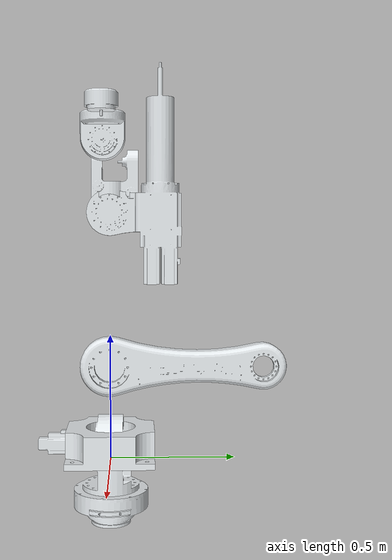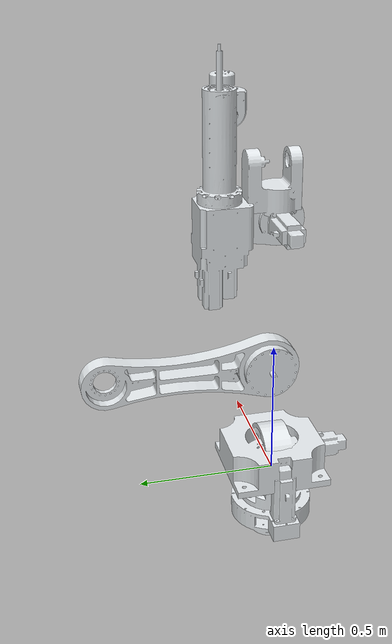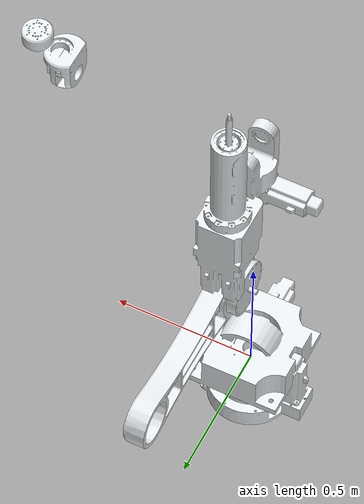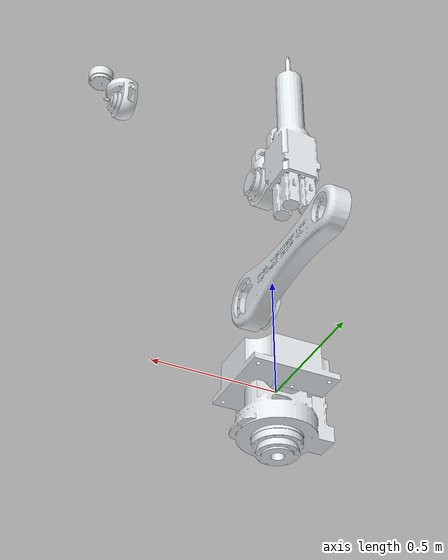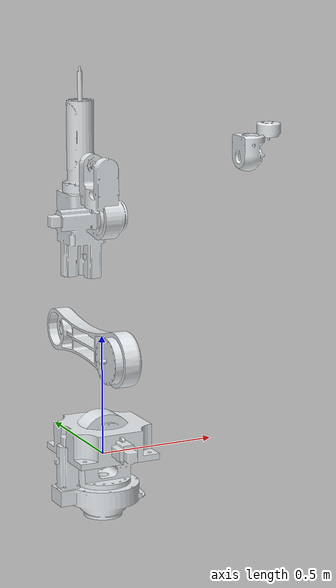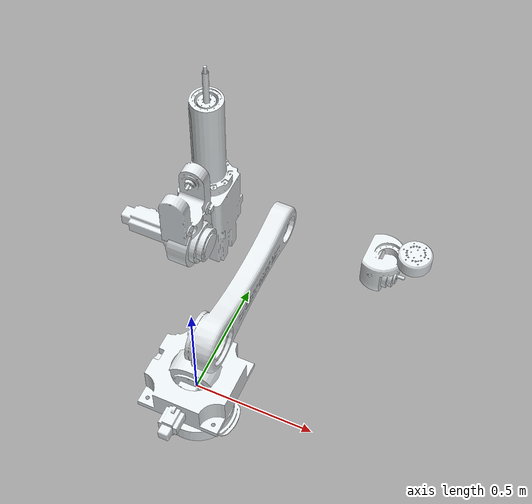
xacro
<?xml version="1.0"?>
<robot xmlns:xacro="http://www.ros.org/wiki/xacro" name="model">
    <xacro:arg name="initial_positions_file" default="initial_positions.yaml" />

    <!-- Import model urdf file -->
    <xacro:include filename="$(find fumti)/urdf/model.urdf.xacro" />

    <!-- Import control_xacro -->
    <xacro:include filename="model.ros2_control.xacro" />

    <xacro:model_ros2_control name="FakeSystem" initial_positions_file="$(arg initial_positions_file)"/>

</robot>

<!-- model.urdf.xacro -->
<robot
  name="model">
  <link name= "world" />

  <joint name= "worldJ0" type="fixed">
      <origin xyz="0 0 0" rpy="0 0 0" />
      <parent
      link="world" />
    <child
      link="6RL0" />
    <dynamics damping="10" friction="1.0"/>
  </joint>
  <link name="6RL0">
    <inertial>
      <origin
        xyz="0.003 0 -0.005"
        rpy="0 0 0" />
      <mass
        value="1.781" />
      <inertia
        ixx="0.376"
        ixy="0"
        ixz="-0.001"
        iyy="0.364"
        iyz="0"
        izz="0.65" />
    </inertial>
    <visual>
      <origin
        xyz="0 0 0"
        rpy="0 0 0" />
      <geometry>
        <mesh
          filename="file:///home/zahra/ws_moveit2/src/fumti/meshes/6RL0.STL" />
      </geometry>
      <material
        name="">
        <color
          rgba="0.89804 0.91765 0.92941 1" />
      </material>
    </visual>
    <collision>
      <origin
        xyz="0 0 0"
        rpy="0 0 0" />
      <geometry>
        <mesh
          filename="file:///home/zahra/ws_moveit2/src/fumti/meshes/6RL0.STL" />
      </geometry>
    </collision>
  </link>
  <link name="6RL1">
    <inertial>
      <origin
        xyz="-0.016 -0.02 0.195"
        rpy="0 0 0" />
      <mass
        value="0.923" />
      <inertia
        ixx="0.557"
        ixy="-0.009"
        ixz="-0.018"
        iyy="0.601"
        iyz="-0.076"
        izz="0.362" />
    </inertial>
    <visual>
      <origin
        xyz="0 0 0"
        rpy="0 0 0" />
      <geometry>
        <mesh
          filename="file:///home/zahra/ws_moveit2/src/fumti/meshes/6RL1.STL" />
      </geometry>
      <material
        name="">
        <color
          rgba="0.89804 0.91765 0.92941 1" />
      </material>
    </visual>
    <collision>
      <origin
        xyz="0 0 0"
        rpy="0 0 0" />
      <geometry>
        <mesh
          filename="file:///home/zahra/ws_moveit2/src/fumti/meshes/6RL1.STL" />
      </geometry>
    </collision>
  </link>
  <joint name="6RJ1" type="revolute">
    <origin
      xyz="0 0 0.0635"
      rpy="0 0 0" />
    <parent
      link="6RL0" />
    <child
      link="6RL1" />
    <axis
      xyz="0 0 1" />
    <limit
      lower="-10"
      upper="10"
      effort="-1"
      velocity="-1" />
      <dynamics damping="10" friction="1.0"/>
  </joint>
  <link name="6RL2">
    <inertial>
      <origin
        xyz="0.183 0 0.082"
        rpy="0 0 0" />
      <mass
        value="0.89" />
      <inertia
        ixx="0.067"
        ixy="0"
        ixz="0.044"
        iyy="1"
        iyz="0"
        izz="1.034" />
    </inertial>
    <visual>
      <origin
        xyz="0 0 0"
        rpy="0 0 0" />
      <geometry>
        <mesh
          filename="file:///home/zahra/ws_moveit2/src/fumti/meshes/6RL2.STL" />
      </geometry>
      <material
        name="">
        <color
          rgba="0.89804 0.91765 0.92941 1" />
      </material>
    </visual>
    <collision>
      <origin
        xyz="0 0 0"
        rpy="0 0 0" />
      <geometry>
        <mesh
          filename="file:///home/zahra/ws_moveit2/src/fumti/meshes/6RL2.STL" />
      </geometry>
    </collision>
  </link>
  <joint name="6RJ2" type="revolute">
    <origin
      xyz="0 0 0.326"
      rpy="4.7124 -1.5708 0" />
    <parent
      link="6RL1" />
    <child
      link="6RL2" />
    <axis
      xyz="0 0 1" />
    <limit
      lower="-10"
      upper="10"
      effort="-1"
      velocity="-1" />
      <dynamics damping="10" friction="1.0"/>
  </joint>
  <link name="6RL3">
    <inertial>
      <origin
        xyz="0.128 0.002 -0.003"
        rpy="0 0 0" />
      <mass
        value="0.16" />
      <inertia
        ixx="0.618"
        ixy="-0.007"
        ixz="0.019"
        iyy="0.331"
        iyz="-0.005"
        izz="0.791" />
    </inertial>
    <visual>
      <origin
        xyz="0 0 0"
        rpy="0 0 0" />
      <geometry>
        <mesh
          filename="file:///home/zahra/ws_moveit2/src/fumti/meshes/6RL3.STL" />
      </geometry>
      <material
        name="">
        <color
          rgba="0.89804 0.91765 0.92941 1" />
      </material>
    </visual>
    <collision>
      <origin
        xyz="0 0 0"
        rpy="0 0 0" />
      <geometry>
        <mesh
          filename="file:///home/zahra/ws_moveit2/src/fumti/meshes/6RL3.STL" />
      </geometry>
    </collision>
  </link>
  <joint name="6RJ3" type="revolute">
    <origin
      xyz="0.6 0 0"
      rpy="0 0 0" />
    <parent
      link="6RL2" />
    <child
      link="6RL3" />
    <axis
      xyz="0 0 1" />
    <limit
      lower="-10"
      upper="10"
      effort="-1"
      velocity="-1" />
      <dynamics damping="10" friction="1.0"/>
  </joint>
  <link name="6RL4">
    <inertial>
      <origin
        xyz="0 0.015 0.562"
        rpy="0 0 0" />
      <mass
        value="0.0742" />
      <inertia
        ixx="0.04"
        ixy="0"
        ixz="0"
        iyy="0.032"
        iyz="0.004"
        izz="0.018" />
    </inertial>
    <visual>
      <origin
        xyz="0 0 0"
        rpy="0 0 0" />
      <geometry>
        <mesh
          filename="file:///home/zahra/ws_moveit2/src/fumti/meshes/6RL4.STL" />
      </geometry>
      <material
        name="">
        <color
          rgba="0.89804 0.91765 0.92941 1" />
      </material>
    </visual>
    <collision>
      <origin
        xyz="0 0 0"
        rpy="0 0 0" />
      <geometry>
        <mesh
          filename="file:///home/zahra/ws_moveit2/src/fumti/meshes/6RL4.STL" />
      </geometry>
    </collision>
  </link>
  <joint name="6RJ4" type="revolute">
    <origin
      xyz="0.2 0 0"
      rpy="-1.5708 0 0" />
    <parent
      link="6RL3" />
    <child
      link="6RL4" />
    <axis
      xyz="0 0 1" />
    <limit
      lower="-10"
      upper="10"
      effort="-1"
      velocity="-1" />
      <dynamics damping="10" friction="1.0"/>
  </joint>
  <link name="6RL5">
    <inertial>
      <origin
        xyz="-0.003 0.02 -0.013"
        rpy="0 0 0" />
      <mass
        value="0.0615" />
      <inertia
        ixx="0.007"
        ixy="0"
        ixz="0"
        iyy="0.006"
        iyz="0"
        izz="0.008" />
    </inertial>
    <visual>
      <origin
        xyz="0 0 0"
        rpy="0 0 0" />
      <geometry>
        <mesh
          filename="file:///home/zahra/ws_moveit2/src/fumti/meshes/6RL5.STL" />
      </geometry>
      <material
        name="">
        <color
          rgba="0.89804 0.91765 0.92941 1" />
      </material>
    </visual>
    <collision>
      <origin
        xyz="0 0 0"
        rpy="0 0 0" />
      <geometry>
        <mesh
          filename="file:///home/zahra/ws_moveit2/src/fumti/meshes/6RL5.STL" />
      </geometry>
    </collision>
  </link>
  <joint name="6RJ5" type="revolute">
    <origin
      xyz="0 0 0.6855"
      rpy="1.5708 0 0" />
    <parent
      link="6RL4" />
    <child
      link="6RL5" />
    <axis
      xyz="0 0 1" />
    <limit
      lower="-10"
      upper="10"
      effort="-1"
      velocity="-1" />
      <dynamics damping="10" friction="1.0"/>
  </joint>
  <link name="6RL6">
    <inertial>
      <origin
        xyz="0 0 0.029"
        rpy="0 0 0" />
      <mass
        value="0.00955" />
      <inertia
        ixx="0.001"
        ixy="0"
        ixz="0"
        iyy="0.001"
        iyz="0"
        izz="0.001" />
    </inertial>
    <visual>
      <origin
        xyz="0 0 0"
        rpy="0 0 0" />
      <geometry>
        <mesh
          filename="file:///home/zahra/ws_moveit2/src/fumti/meshes/6RL6.STL" />
      </geometry>
      <material
        name="">
        <color
          rgba="0.89804 0.91765 0.92941 1" />
      </material>
    </visual>
    <collision>
      <origin
        xyz="0 0 0"
        rpy="0 0 0" />
      <geometry>
        <mesh
          filename="file:///home/zahra/ws_moveit2/src/fumti/meshes/6RL6.STL" />
      </geometry>
    </collision>
  </link>
  <joint name="6RJ6" type="revolute">
    <origin
      xyz="0 0.079 0"
      rpy="-1.5708 0 0" />
    <parent
      link="6RL5" />
    <child
      link="6RL6" />
    <axis
      xyz="0 0 1" />
    <limit
      lower="-10"
      upper="10"
      effort="-1"
      velocity="-1" />
      <dynamics damping="10" friction="1.0"/>
  </joint>

  <link name="camera_link">
    <inertial>
      <mass value="1e-5" />
      <origin xyz="0 0 0" rpy="0 0 0"/>
      <inertia ixx="1e-6" ixy="0" ixz="0" iyy="1e-6" iyz="0" izz="1e-6" />
    </inertial>
  </link>

  <joint name= "camera_joint" type="fixed">
      <axis xyz="0 0 0" />
      <origin xyz="0.1 0 0" rpy="3.14 -1.57 0"/>
      <parent link="6RL6"/>
      <child link="camera_link"/>
    <dynamics damping="10" friction="1.0"/>
  </joint>

  <gazebo reference="camera_link">
    <sensor name='camera' type='camera'>
      <pose>0 0 0 0 0 0</pose>
      <topic>camera</topic>
      <update_rate>30</update_rate>
      <enable_metrics>false</enable_metrics>
      <camera name='__default__'>
        <pose>0 0 0 0 0 0</pose>
        <horizontal_fov>1.0469999999999999</horizontal_fov>
        <image>
          <width>320</width>
          <height>240</height>
          <format>RGB_INT8</format>
          <anti_aliasing>4</anti_aliasing>
        </image>
        <camera_info_topic>__default__</camera_info_topic>
        <trigger_topic></trigger_topic>
        <triggered>false</triggered>
        <clip>
          <near>0.10000000000000001</near>
            <far>100</far>
        </clip>
        <save enabled='true'>
          <path>/home/zahra/Desktop</path>
        </save>
        <visibility_mask>4294967295</visibility_mask>
        <noise>
          <type>none</type>
          <mean>0</mean>
          <stddev>0</stddev>
        </noise>
        <distortion>
          <k1>0</k1>
          <k2>0</k2>
          <k3>0</k3>
          <p1>0</p1>
          <p2>0</p2>
          <center>0.5 0.5</center>
        </distortion>
        <lens>
          <type>stereographic</type>
          <scale_to_hfov>true</scale_to_hfov>
          <cutoff_angle>1.5707963267948966</cutoff_angle>
          <env_texture_size>256</env_texture_size>
        </lens>
        <optical_frame_id></optical_frame_id>
      </camera>
      <plugin name='gz::sim::systems::Sensors' filename='gz-sim-sensors-system'>
        <render_engine>ogre</render_engine>
      </plugin>
    </sensor>
  </gazebo>

<ros2_control name="GazeboSystem" type="system">
  <hardware>
    <plugin>gz_ros2_control/GazeboSimSystem</plugin>
  </hardware>
  <joint name="6RJ1">
    <command_interface name="position">
      <param name="min">-10</param>
      <param name="max">10</param>
    </command_interface>
    <state_interface name="position">
      <param name="initial_value">0</param>
    </state_interface>
    <state_interface name="velocity"/>
  </joint>
  <joint name="6RJ2">
    <command_interface name="position">
      <param name="min">-10</param>
      <param name="max">10</param>
    </command_interface>
    <state_interface name="position">
      <param name="initial_value">0</param>
    </state_interface>
    <state_interface name="velocity"/>
  </joint>
  <joint name="6RJ3">
    <command_interface name="position">
      <param name="min">-10</param>
      <param name="max">10</param>
    </command_interface>
    <state_interface name="position">
      <param name="initial_value">0</param>
    </state_interface>
    <state_interface name="velocity"/>
  </joint>
  <joint name="6RJ4">
    <command_interface name="position">
      <param name="min">-10</param>
      <param name="max">10</param>
    </command_interface>
    <state_interface name="position">
      <param name="initial_value">0</param>
    </state_interface>
    <state_interface name="velocity"/>
  </joint>
  <joint name="6RJ5">
    <command_interface name="position">
      <param name="min">-10</param>
      <param name="max">10</param>
    </command_interface>
    <state_interface name="position">
      <param name="initial_value">0</param>
    </state_interface>
    <state_interface name="velocity"/>
  </joint>
  <joint name="6RJ6">
    <command_interface name="position">
      <param name="min">-10</param>
      <param name="max">10</param>
    </command_interface>
    <state_interface name="position">
      <param name="initial_value">0</param>
    </state_interface>
    <state_interface name="velocity"/>
  </joint>
</ros2_control>

<gazebo>
  <plugin name="gz_ros2_control::GazeboSimROS2ControlPlugin" filename="gz_ros2_control-system">
    <parameters>src/ws3/config/ros2_controllers_gz.yaml</parameters>
    <controller_manager_prefix_node_name>controller_manager</controller_manager_prefix_node_name>
  </plugin>
</gazebo>

</robot>
